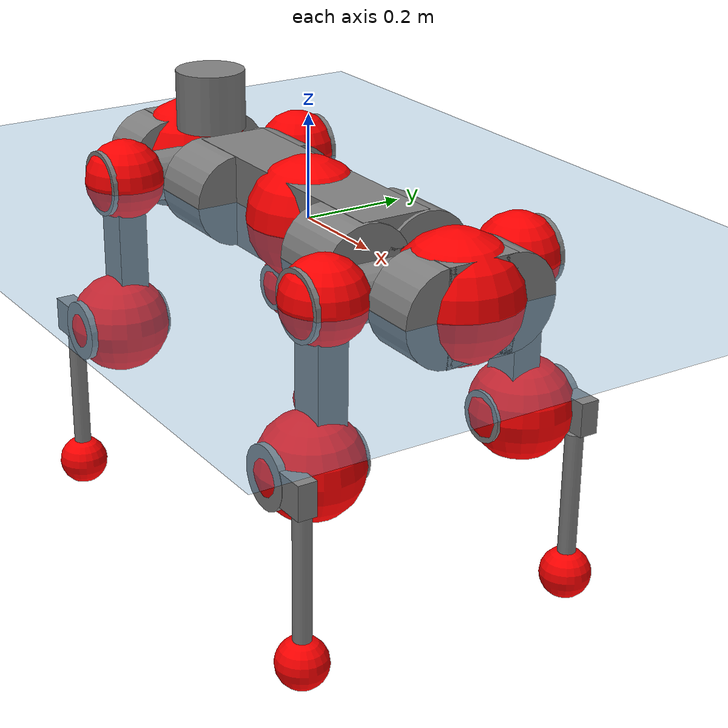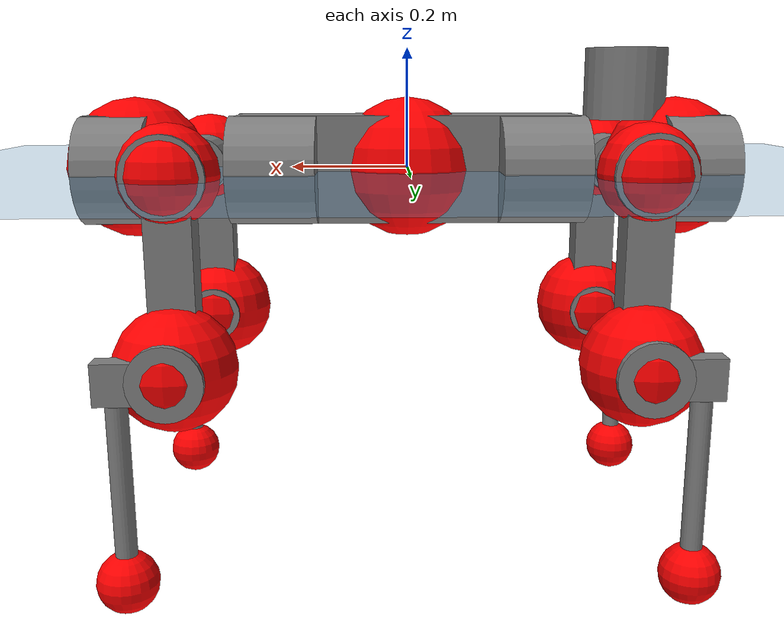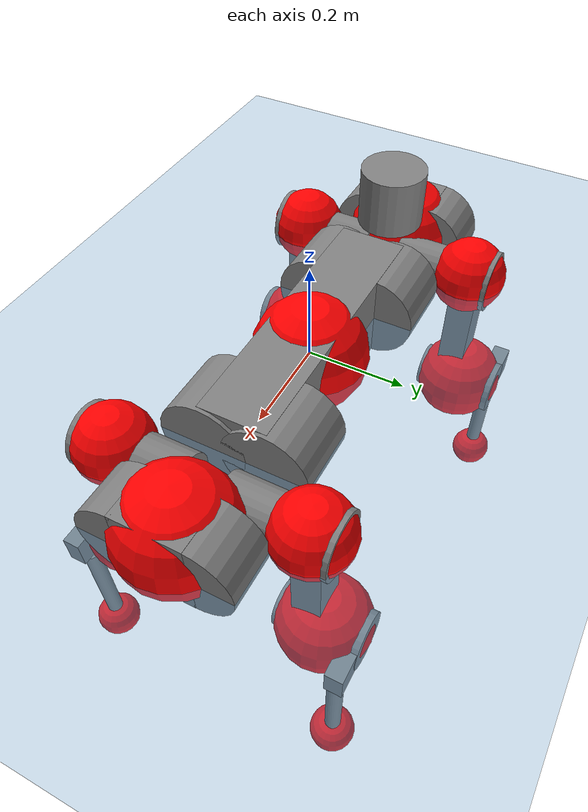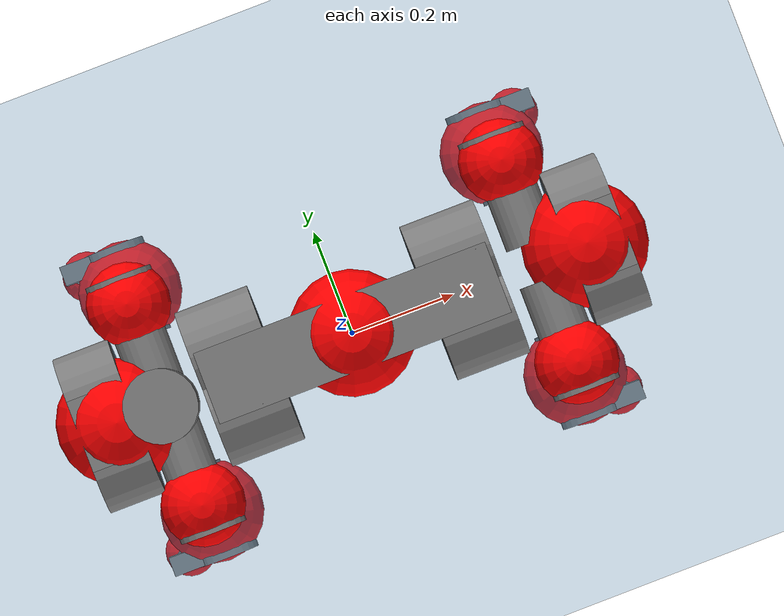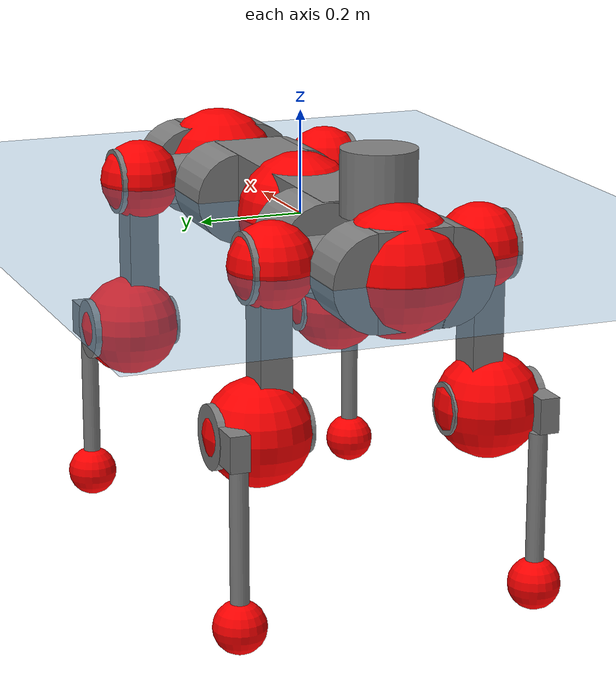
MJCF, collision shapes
<mujoco model="anymal_c">
  <compiler angle="radian" assetdir="assets" balanceinertia="true" inertiafromgeom="false"/>

  <option timestep="0.005" density="1.2" viscosity="2e-05"/>

  <size nkey="1"/>

  <visual>
    <quality shadowsize="8192"/>
    <map shadowclip="0.5"/>
  </visual>

  <default>
    <default class="/">
      <material specular="0" shininess="0.25"/>
      <geom contype="0" conaffinity="0" group="1" solref="-1000 -80"/>
      <site size="0.01 0.005 0.005" group="5"/>
      <general forcelimited="true" forcerange="-80 80" biastype="affine" gainprm="80" biasprm="0 -80 -2"/>
      <default class="anymal_c">
        <joint armature="0.01" damping="0.01" frictionloss="0.1"/>
        <default class="visual">
          <geom type="mesh" group="2"/>
          <default class="visual_zflip"/>
        </default>
        <default class="collision">
          <geom type="cylinder" group="3"/>
          <default class="foot">
            <geom size="0.03 0 0" type="sphere" condim="6" priority="1" friction="0.8 0.02 0.01" solimp="0.015 1 0.03"/>
          </default>
        </default>
      </default>
      <default class="reward_collision_sphere">
        <geom group="5" rgba="1 0 0 1"/>
      </default>
    </default>
  </default>

  <asset>
    <texture type="skybox" colorspace="auto" name="//unnamed_texture_0" builtin="gradient" rgb1="0.95 0.95 0.95" rgb2="0.95 0.95 0.95" width="100" height="600"/>
    <texture type="2d" colorspace="auto" name="texplane" builtin="checker" rgb1="0.345 0.575 0.748" rgb2="0.345 0.575 0.748" markrgb="1 1 1" width="512" height="512"/>
    <texture type="2d" colorspace="linear" name="base" file="base.png"/>
    <texture type="2d" colorspace="linear" name="top_shell" file="top_shell.png"/>
    <texture type="2d" colorspace="linear" name="bottom_shell" file="bottom_shell.png"/>
    <texture type="2d" colorspace="linear" name="remote" file="remote.png"/>
    <texture type="2d" colorspace="linear" name="hatch" file="hatch.png"/>
    <texture type="2d" colorspace="linear" name="handle" file="handle.png"/>
    <texture type="2d" colorspace="linear" name="face" file="face.png"/>
    <texture type="2d" colorspace="linear" name="battery" file="battery.png"/>
    <texture type="2d" colorspace="linear" name="lidar_cage" file="lidar_cage.png"/>
    <texture type="2d" colorspace="linear" name="depth_camera" file="depth_camera.png"/>
    <texture type="2d" colorspace="linear" name="wide_angle_camera" file="wide_angle_camera.png"/>
    <texture type="2d" colorspace="linear" name="lidar" file="lidar.png"/>
    <texture type="2d" colorspace="linear" name="drive" file="drive.png"/>
    <texture type="2d" colorspace="linear" name="hip_l" file="hip_l.png"/>
    <texture type="2d" colorspace="linear" name="shank_l" file="shank_l.png"/>
    <texture type="2d" colorspace="linear" name="foot" file="foot.png"/>
    <texture type="2d" colorspace="linear" name="thigh" file="thigh.png"/>
    <texture type="2d" colorspace="linear" name="shank_r" file="shank_r.png"/>
    <texture type="2d" colorspace="linear" name="hip_r" file="hip_r.png"/>
    <material name="MatPlane" class="/" texture="texplane" texuniform="true" texrepeat="2 2" specular="0.9" shininess="0.5"/>
    <material name="black_plastic" class="/" rgba="0.007 0.007 0.007 1"/>
    <material name="green" class="/" rgba="0.052 0.178 0.033 1"/>
    <material name="red" class="/" rgba="0.178 0.006 0.005 1"/>
    <material name="yellow" class="/" rgba="0.178 0.119 0.006 1"/>
    <material name="lwl" class="/" rgba="0.8 0.8 0.8 1"/>
    <material name="base" class="/" texture="base"/>
    <material name="top_shell" class="/" texture="top_shell"/>
    <material name="bottom_shell" class="/" texture="bottom_shell"/>
    <material name="hip_l" class="/" texture="hip_l"/>
    <material name="thigh" class="/" texture="thigh"/>
    <material name="shank_l" class="/" texture="shank_l"/>
    <material name="foot" class="/" texture="foot"/>
    <material name="hip_r" class="/" texture="hip_r"/>
    <material name="shank" class="/" texture="shank_r"/>
    <material name="hatch" class="/" texture="hatch"/>
    <material name="remote" class="/" texture="remote"/>
    <material name="handle" class="/" texture="handle"/>
    <material name="face" class="/" texture="face"/>
    <material name="depth_camera" class="/" texture="depth_camera"/>
    <material name="wide_angle_camera" class="/" texture="wide_angle_camera"/>
    <material name="battery" class="/" texture="battery"/>
    <material name="lidar_cage" class="/" texture="lidar_cage"/>
    <material name="lidar" class="/" texture="lidar"/>
    <material name="drive" class="/" texture="drive"/>
    <mesh name="base_0" class="/" file="base_0.obj"/>
    <mesh name="base_1" class="/" file="base_1.obj"/>
    <mesh name="base_2" class="/" file="base_2.obj"/>
    <mesh name="base_3" class="/" file="base_3.obj"/>
    <mesh name="base_4" class="/" file="base_4.obj"/>
    <mesh name="base_5" class="/" file="base_5.obj"/>
    <mesh name="top_shell" class="/" file="top_shell.obj"/>
    <mesh name="bottom_shell" class="/" file="bottom_shell.obj"/>
    <mesh name="remote" class="/" file="remote.obj"/>
    <mesh name="handle" class="/" file="handle.obj"/>
    <mesh name="face" class="/" file="face.obj"/>
    <mesh name="wide_angle_camera" class="/" file="wide_angle_camera.obj"/>
    <mesh name="depth_camera" class="/" file="depth_camera.obj"/>
    <mesh name="battery" class="/" file="battery.obj"/>
    <mesh name="lidar_cage" class="/" file="lidar_cage.obj"/>
    <mesh name="lidar" class="/" file="lidar.obj"/>
    <mesh name="drive" class="/" file="drive.obj"/>
    <mesh name="hip_l" class="/" file="hip_l.obj"/>
    <mesh name="thigh" class="/" file="thigh.obj"/>
    <mesh name="shank_l" class="/" file="shank_l.obj"/>
    <mesh name="foot" class="/" file="foot.obj"/>
    <mesh name="hip_r" class="/" file="hip_r.obj"/>
    <mesh name="hatch" class="/" file="hatch.obj"/>
    <mesh name="shank_r" class="/" file="shank_r.obj"/>
  </asset>

  <worldbody>
    <geom name="floor" class="/" size="100 100 0.125" type="plane" group="0" material="MatPlane"/>
    <light name="toplight_shadow" class="/" pos="0 0 5" dir="0.0990148 0.0990148 -0.990148" type="directional" ambient="0.04 0.04 0.04" diffuse="0.55 0.55 0.55" specular="0.12 0.12 0.12"/>
    <light name="toplight_fill" class="/" pos="0 0 5" dir="0.0990148 0.0990148 -0.990148" type="directional" castshadow="false" ambient="0.04 0.04 0.04" diffuse="0.3 0.3 0.3" specular="0.08 0.08 0.08"/>
    <body name="trunk" childclass="anymal_c" pos="2.12198e-05 0.000634626 0.000313169" quat="1 7.27041e-05 0.000212782 -0.000210242">
      <inertial pos="0.00331313 -0.00149145 0.0510476" quat="0.497613 0.501065 0.498152 0.503149" mass="18.2521" diaginertia="0.711745 0.356054 0.27382"/>
      <joint name="//unnamed_joint_0" type="free" armature="0" damping="0" frictionloss="0"/>
      <geom name="//unnamed_geom_1" class="visual" material="green" mesh="base_0"/>
      <geom name="//unnamed_geom_2" class="visual" material="yellow" mesh="base_1"/>
      <geom name="//unnamed_geom_3" class="visual" material="red" mesh="base_2"/>
      <geom name="//unnamed_geom_4" class="visual" material="black_plastic" mesh="base_3"/>
      <geom name="//unnamed_geom_5" class="visual" material="lwl" mesh="base_4"/>
      <geom name="//unnamed_geom_6" class="visual" material="base" mesh="base_5"/>
      <geom name="trunk_1" class="collision" size="0.288123 0.069547 0.0894175" type="box"/>
      <geom name="trunk_2" class="collision" size="0.0894175 0.0720308" pos="0.223956 0.0629374 0" quat="0.707107 0 0.707107 0"/>
      <geom name="trunk_3" class="collision" size="0.0894175 0.0720308" pos="-0.223956 0.0629374 0" quat="0.707107 0 0.707107 0"/>
      <geom name="trunk_4" class="collision" size="0.0894175 0.0720308" pos="0.223956 -0.0629374 0" quat="0.707107 0 0.707107 0"/>
      <geom name="trunk_5" class="collision" size="0.0894175 0.0720308" pos="-0.223956 -0.0629374 0" quat="0.707107 0 0.707107 0"/>
      <geom name="//unnamed_geom_12" class="visual" material="top_shell" mesh="top_shell"/>
      <geom name="//unnamed_geom_13" class="visual" material="bottom_shell" mesh="bottom_shell"/>
      <geom name="//unnamed_geom_14" class="visual" material="remote" mesh="remote"/>
      <geom name="//unnamed_geom_15" class="visual" material="handle" mesh="handle"/>
      <geom name="//unnamed_geom_16" class="visual" pos="0.426803 0 0" quat="1 0 0 0" material="face" mesh="face"/>
      <geom name="trunk_6" class="collision" size="0.054644 0.069547 0.0894175" pos="0.483435 0 0" type="box"/>
      <geom name="//unnamed_geom_18" class="collision" size="0.0894175 0.054644" pos="0.483435 0.0629374 0" quat="0.707107 0 0.707107 0"/>
      <geom name="//unnamed_geom_19" class="collision" size="0.0894175 0.054644" pos="0.483435 -0.0629374 0" quat="0.707107 0 0.707107 0"/>
      <geom name="//unnamed_geom_20" class="visual" pos="0.475353 0 -0.0308806" quat="0.965926 0 0.258819 0" material="depth_camera" mesh="depth_camera"/>
      <geom name="//unnamed_geom_21" class="visual" pos="0.528227 0 0.0157454" material="wide_angle_camera" mesh="wide_angle_camera"/>
      <geom name="//unnamed_geom_22" class="visual_zflip" pos="-0.426803 0 0" quat="0 0 0 1" material="face" mesh="face"/>
      <geom name="trunk_7" class="collision" size="0.054644 0.069547 0.0894175" pos="-0.483435 0 0" quat="0 0 0 1" type="box"/>
      <geom name="//unnamed_geom_24" class="collision" size="0.0894175 0.054644" pos="-0.483435 -0.0629374 0" quat="0 -0.707107 0 0.707107"/>
      <geom name="//unnamed_geom_25" class="collision" size="0.0894175 0.054644" pos="-0.483435 0.0629374 0" quat="0 -0.707107 0 0.707107"/>
      <geom name="//unnamed_geom_26" class="visual" pos="-0.475353 0 -0.0308806" quat="0 -0.258819 0 0.965926" material="depth_camera" mesh="depth_camera"/>
      <geom name="//unnamed_geom_27" class="visual_zflip" pos="-0.528227 0 0.0157454" quat="0 0 0 1" material="wide_angle_camera" mesh="wide_angle_camera"/>
      <geom name="//unnamed_geom_28" class="visual" material="battery" mesh="battery"/>
      <geom name="//unnamed_geom_29" class="visual" pos="0 0.0670331 0.0303866" quat="0.683013 -0.183013 0.183013 0.683013" material="depth_camera" mesh="depth_camera"/>
      <geom name="//unnamed_geom_30" class="visual" pos="0 -0.0670331 0.0303866" quat="0.683013 0.183013 0.183013 -0.683013" material="depth_camera" mesh="depth_camera"/>
      <geom name="//unnamed_geom_31" class="visual" pos="-0.374804 0 0.0773071" quat="1 0 0 0" material="lidar_cage" mesh="lidar_cage"/>
      <geom name="trunk_8" class="collision" size="0.069547 0.0596117" pos="-0.374804 0 0.140415"/>
      <geom name="//unnamed_geom_33" class="visual" pos="-0.374804 -5.12998e-05 0.149566" quat="0.707107 0 0 -0.707107" material="lidar" mesh="lidar"/>
      <geom name="//unnamed_geom_34" class="visual" pos="0.308801 0.0935612 -2.63396e-09" quat="0.258819 0.965926 0 0" material="drive" mesh="drive"/>
      <geom name="//unnamed_geom_35" class="visual" pos="0.308801 -0.0935612 2.63396e-09" quat="0.258819 -0.965926 0 0" material="drive" mesh="drive"/>
      <geom name="//unnamed_geom_36" class="visual" pos="-0.308801 0.0935612 2.63396e-09" quat="0 0 0.965926 -0.258819" material="drive" mesh="drive"/>
      <geom name="//unnamed_geom_37" class="visual" pos="-0.308801 -0.0935612 -2.63396e-09" quat="0 0 -0.965926 -0.258819" material="drive" mesh="drive"/>
      <geom name="//unnamed_geom_38" class="visual" pos="0.119443 0 0.0767812" quat="1 0 0 0" material="hatch" mesh="hatch"/>
      <geom name="//unnamed_geom_39" class="reward_collision_sphere" size="0.119223"/>
      <geom name="//unnamed_geom_40" class="reward_collision_sphere" size="0.119223" pos="0.463357 0 0"/>
      <geom name="//unnamed_geom_41" class="reward_collision_sphere" size="0.119223" pos="-0.463357 0 0"/>
      <site name="imu" pos="0.254867 0.00649153 0.0476183" size="0.00993528"/>
      <camera name="track" pos="0 -1.79821 0" quat="0.707107 0.707107 0 0" mode="trackcom"/>
      <camera name="ego_camera" pos="0.463357 0 -0.0420719" quat="-0.5 -0.5 0.5 0.5"/>
      <body name="LF_HIP" pos="0.309688 0.093596 -0.000221343" quat="0.258835 0.965922 -4.15816e-06 -1.15797e-05">
        <inertial pos="0.0584005 -0.0135075 -0.00855994" quat="-0.133373 0.704655 -0.137622 0.683179" mass="2.73139" diaginertia="0.00682117 0.00293715 0.00427087"/>
        <joint name="LF_HAA" pos="0 0 0" axis="0.999998 -0.000870664 0.00205235" range="-0.700013 0.479959" armature="0.0100216" damping="0.00904857" frictionloss="0.0984421"/>
        <geom name="//unnamed_geom_42" class="visual" pos="0 -0.000154944 2.54494e-05" quat="0.258819 -0.965926 0 0" material="hip_l" mesh="hip_l"/>
        <geom name="//unnamed_geom_43" class="visual" pos="0.0616779 -0.0730709 -0.0433169" quat="0.183013 -0.683013 0.683013 0.183013" material="drive" mesh="drive"/>
        <geom name="//unnamed_geom_44" class="collision" size="0.0496764 0.069547" pos="0.0616779 -0.0107531 -0.00726266" quat="-0.353553 -0.612372 0.612372 -0.353553"/>
        <body name="LF_THIGH" pos="0.0622383 -0.0666152 -0.0449885" quat="0.182811 -0.682538 0.68346 0.183314">
          <inertial pos="0.0318635 0.00160031 -0.258874" quat="0.993311 -0.00868088 -0.0801483 0.0826745" mass="2.98239" diaginertia="0.0348357 0.0178869 0.0054056"/>
          <joint name="LF_HFE" pos="0 0 0" axis="1 -0.000132385 -0.000893381" range="-3.13376 3.11873" armature="0.0106468" damping="0.0122452" frictionloss="0.104024"/>
          <geom name="//unnamed_geom_45" class="visual" pos="0.00259795 4.09376e-06 0" quat="0.707107 0 0 -0.707107" material="thigh" mesh="thigh"/>
          <geom name="//unnamed_geom_46" class="collision" size="0.0645793 0.0397411" pos="0.0411873 0 0" quat="0.5 0.5 -0.5 -0.5"/>
          <geom name="//unnamed_geom_47" class="collision" size="0.0372573 0.0298058 0.140399" pos="0.0308904 0 -0.148634" quat="0.707107 0 0 -0.707107" type="box"/>
          <geom name="//unnamed_geom_48" class="visual" pos="0.103277 0 -0.299762" quat="1 0 0 0" material="drive" mesh="drive"/>
          <geom name="//unnamed_geom_49" class="collision" size="0.0496764 0.069547" pos="0.0311993 0 -0.299762" quat="0.707107 0 0.707107 0"/>
          <geom name="//unnamed_geom_50" class="reward_collision_sphere" size="0.0794822" pos="0.025742 0 0"/>
          <body name="LF_SHANK" pos="0.103543 -0.000103639 -0.30065" quat="1 5.1171e-05 0.000130824 -0.000100948">
            <inertial pos="0.00497316 -0.0542593 -0.0849734" quat="0.993027 -0.115507 0.00122081 -0.0235527" mass="0.57887" diaginertia="0.0118889 0.00554357 0.0014498"/>
            <joint name="LF_KFE" pos="0 0 0" axis="1 0.000359474 0.000748849" range="-3.11047 3.13833" armature="0.0104433" damping="0.00287754" frictionloss="0.0972364"/>
            <geom name="//unnamed_geom_51" class="visual" pos="0.000847135 0.00451697 0" quat="0.707107 0 0 -0.707107" material="shank_l" mesh="shank_l"/>
            <geom name="LF_kfe_act" class="collision" size="0.0596117 0.0198706" pos="0.0205936 0 0" quat="0.5 0.5 -0.5 -0.5"/>
            <geom name="//unnamed_geom_53" class="collision" size="0.0571269 0.0335316 0.018877" pos="0.0205936 -0.0516977 0" quat="0.5 0.5 -0.5 -0.5" type="box"/>
            <geom name="//unnamed_geom_54" class="visual" pos="0.0134371 -0.0776207 -0.355476" quat="0.382683 0 0 -0.92388" material="foot" mesh="foot"/>
            <geom name="LF_calf" class="collision" size="0.0173867 0.140338" pos="0.0134373 -0.0790763 -0.177738" quat="0.707107 0 0 -0.707107"/>
            <geom name="LF_foot" class="foot" size="0.0301695" pos="0.0134373 -0.0790763 -0.331811" quat="0.707107 0 0 -0.707107"/>
            <geom name="//unnamed_geom_57" class="reward_collision_sphere" size="0.0993528" pos="-0.0514841 0 0"/>
            <geom name="//unnamed_geom_58" class="reward_collision_sphere" size="0.0496764" pos="0.0134373 -0.0790763 -0.331811"/>
            <site name="LF_foot" class="foot" pos="0.0134373 -0.0790763 -0.331811" quat="0.707107 0 0 -0.707107" size="0.00993528"/>
          </body>
        </body>
      </body>
      <body name="RF_HIP" pos="0.308049 -0.092936 -0.00168716" quat="0.258633 -0.965976 7.82472e-05 -0.000124736">
        <inertial pos="0.0580046 0.0132454 -0.0079889" quat="0.13261 0.677431 0.127712 0.712174" mass="2.74759" diaginertia="0.00681252 0.00289389 0.00420153"/>
        <joint name="RF_HAA" pos="0 0 0" axis="0.999996 -0.000403817 0.00294889" range="-0.491348 0.73251" armature="0.0104613" damping="0.0116019" frictionloss="0.098669"/>
        <geom name="//unnamed_geom_59" class="visual" pos="0 0.000154943 2.54493e-05" quat="0.258819 0.965926 0 0" material="hip_r" mesh="hip_r"/>
        <geom name="//unnamed_geom_60" class="visual" pos="0.0616779 0.0730709 -0.0433169" quat="0.183013 0.683013 0.683013 -0.183013" material="drive" mesh="drive"/>
        <geom name="//unnamed_geom_61" class="collision" size="0.0496764 0.069547" pos="0.0616779 0.0107531 -0.00726266" quat="-0.353553 0.612372 0.612372 0.353553"/>
        <body name="RF_THIGH" pos="0.0627106 0.0665757 -0.0458172" quat="0.183023 0.683011 0.683026 -0.182962">
          <inertial pos="0.0308618 0.000634444 -0.257102" quat="0.992619 -0.00639037 -0.0831575 0.088044" mass="3.00997" diaginertia="0.0353538 0.0175831 0.00539231"/>
          <joint name="RF_HFE" pos="0 0 0" axis="0.999991 -0.00414415 -0.00120273" stiffness="0.0103633" range="-3.13813 3.12749" armature="0.00962807" damping="0.0121224" frictionloss="0.103324"/>
          <geom name="//unnamed_geom_62" class="visual" pos="0.00259795 4.09376e-06 0" quat="0.707107 0 0 -0.707107" material="thigh" mesh="thigh"/>
          <geom name="//unnamed_geom_63" class="collision" size="0.0645793 0.0397411" pos="0.0411873 0 0" quat="0.5 0.5 0.5 0.5"/>
          <geom name="//unnamed_geom_64" class="collision" size="0.0372573 0.0298058 0.140399" pos="0.0308904 0 -0.148634" quat="0.707107 0 0 0.707107" type="box"/>
          <geom name="//unnamed_geom_65" class="visual" pos="0.103277 0 -0.299762" quat="1 0 0 0" material="drive" mesh="drive"/>
          <geom name="//unnamed_geom_66" class="collision" size="0.0496764 0.069547" pos="0.0311993 0 -0.299762" quat="0.707107 0 0.707107 0"/>
          <geom name="//unnamed_geom_67" class="reward_collision_sphere" size="0.0794822" pos="0.025742 0 0"/>
          <body name="RF_SHANK" pos="0.103787 -0.000549833 -0.298351" quat="1 -0.000106883 -5.75802e-05 -0.000144698">
            <inertial pos="0.00668009 0.0544617 -0.0849922" quat="0.993346 0.111993 -0.0015489 0.0268098" mass="0.587441" diaginertia="0.0120866 0.00549378 0.00148223"/>
            <joint name="RF_KFE" pos="0 0 0" axis="0.999998 0.00163032 0.00146873" stiffness="7.65145e-05" range="-3.1524 3.13641" armature="0.00967774" damping="0" frictionloss="0.102543"/>
            <geom name="//unnamed_geom_68" class="visual" pos="0.00084713 -0.00451696 0" quat="0.707107 0 0 0.707107" material="shank" mesh="shank_r"/>
            <geom name="RF_kfe_act" class="collision" size="0.0596117 0.0198706" pos="0.0205936 0 0" quat="0.5 0.5 0.5 0.5"/>
            <geom name="//unnamed_geom_70" class="collision" size="0.0571269 0.0335316 0.018877" pos="0.0205936 0.0516977 0" quat="0.5 0.5 0.5 0.5" type="box"/>
            <geom name="//unnamed_geom_71" class="visual" pos="0.0134375 0.0776207 -0.355476" quat="0.382683 0 0 0.92388" material="foot" mesh="foot"/>
            <geom name="RF_calf" class="collision" size="0.0173867 0.140338" pos="0.0134373 0.0790763 -0.177738" quat="0.707107 0 0 0.707107"/>
            <geom name="RF_foot" class="foot" size="0.0271545" pos="0.0134373 0.0790763 -0.331811" quat="0.707107 0 0 0.707107"/>
            <geom name="//unnamed_geom_74" class="reward_collision_sphere" size="0.0993528" pos="-0.0514841 0 0"/>
            <geom name="//unnamed_geom_75" class="reward_collision_sphere" size="0.0496764" pos="0.0134373 0.0790763 -0.331811"/>
            <site name="RF_foot" class="foot" pos="0.0134373 0.0790763 -0.331811" quat="0.707107 0 0 0.707107" size="0.00993528"/>
          </body>
        </body>
      </body>
      <body name="LH_HIP" pos="-0.30828 0.092806 4.23979e-05" quat="-1.82148e-05 6.27809e-05 0.965927 -0.258816">
        <inertial pos="0.0588997 0.0133467 -0.00959288" quat="0.135021 0.678941 0.129051 0.710038" mass="2.69841" diaginertia="0.00680744 0.00295259 0.00422579"/>
        <joint name="LH_HAA" pos="0 0 0" axis="0.99999 -0.000905783 0.00443867" range="-0.489233 0.732277" armature="0.00979945" damping="0.0107508" frictionloss="0.0986686"/>
        <geom name="//unnamed_geom_76" class="visual" pos="0 0.000154943 2.54493e-05" quat="-0.258819 -0.965926 0 0" material="hip_r" mesh="hip_r"/>
        <geom name="//unnamed_geom_77" class="visual" pos="0.0616779 0.0730709 -0.0433169" quat="0.183013 0.683013 0.683013 -0.183013" material="drive" mesh="drive"/>
        <geom name="//unnamed_geom_78" class="collision" size="0.0496764 0.069547" pos="0.0616779 0.0107531 -0.00726266" quat="-0.353553 0.612372 0.612372 0.353553"/>
        <body name="LH_THIGH" pos="0.0612014 0.0663233 -0.0447667" quat="0.183145 0.683134 0.683049 -0.182289">
          <inertial pos="0.031471 0.00159006 -0.258827" quat="0.992828 -0.004936 -0.0809026 0.0878795" mass="2.95754" diaginertia="0.035371 0.0173366 0.00541927"/>
          <joint name="LH_HFE" pos="0 0 0" axis="0.999975 -0.00505088 0.00486252" range="-3.15227 3.14599" armature="0.00959522" damping="0.00752442" frictionloss="0.103968"/>
          <geom name="//unnamed_geom_79" class="visual" pos="0.00259795 4.09376e-06 0" quat="0.707107 0 0 -0.707107" material="thigh" mesh="thigh"/>
          <geom name="//unnamed_geom_80" class="collision" size="0.0645793 0.0397411" pos="0.0411873 0 0" quat="0.5 0.5 -0.5 -0.5"/>
          <geom name="//unnamed_geom_81" class="collision" size="0.0372573 0.0298058 0.140399" pos="0.0308904 0 -0.148634" quat="0.707107 0 0 -0.707107" type="box"/>
          <geom name="//unnamed_geom_82" class="visual" pos="0.103277 0 -0.299762" quat="1 0 0 0" material="drive" mesh="drive"/>
          <geom name="//unnamed_geom_83" class="collision" size="0.0496764 0.069547" pos="0.0311993 0 -0.299762" quat="0.707107 0 0.707107 0"/>
          <geom name="//unnamed_geom_84" class="reward_collision_sphere" size="0.0794822" pos="0.025742 0 0"/>
          <body name="LH_SHANK" pos="0.10411 -0.00128597 -0.300757" quat="1 0.000147624 -1.44985e-05 -0.000569308">
            <inertial pos="0.0058307 0.0550876 -0.0850152" quat="0.992931 0.116036 -0.00126723 0.0249322" mass="0.582827" diaginertia="0.0119031 0.00548584 0.00145181"/>
            <joint name="LH_KFE" pos="0 0 0" axis="1 -0.000396298 0.000605012" range="-3.1191 3.14372" armature="0.0106885" damping="0.00698832" frictionloss="0.102987"/>
            <geom name="//unnamed_geom_85" class="visual" pos="0.00084713 -0.00451696 0" quat="-0.707107 0 0 -0.707107" material="shank" mesh="shank_r"/>
            <geom name="LH_kfe_act" class="collision" size="0.0596117 0.0198706" pos="0.0205936 0 0" quat="0.5 0.5 -0.5 -0.5"/>
            <geom name="//unnamed_geom_87" class="collision" size="0.0571269 0.0335316 0.018877" pos="0.0205936 0.0516977 0" quat="0.5 0.5 -0.5 -0.5" type="box"/>
            <geom name="//unnamed_geom_88" class="visual" pos="0.0134375 0.0776207 -0.355476" quat="-0.382683 0 0 -0.92388" material="foot" mesh="foot"/>
            <geom name="LH_calf" class="collision" size="0.0173867 0.140338" pos="0.0134373 0.0790763 -0.177738" quat="0.707107 0 0 -0.707107"/>
            <geom name="LH_foot" class="foot" size="0.0313446" pos="0.0134373 0.0790763 -0.331811" quat="0.707107 0 0 -0.707107"/>
            <geom name="//unnamed_geom_91" class="reward_collision_sphere" size="0.0993528" pos="-0.0514841 0 0"/>
            <geom name="//unnamed_geom_92" class="reward_collision_sphere" size="0.0496764" pos="0.0134373 0.0790763 -0.331811"/>
            <site name="LH_foot" class="foot" pos="0.0134373 0.0790763 -0.331811" quat="0.707107 0 0 -0.707107" size="0.00993528"/>
          </body>
        </body>
      </body>
      <body name="RH_HIP" pos="-0.310154 -0.0934815 -0.000151264" quat="-0.00032179 -0.000607951 -0.965753 -0.259464">
        <inertial pos="0.0581328 -0.0135887 -0.00945942" quat="-0.128487 0.709563 -0.134845 0.679579" mass="2.75749" diaginertia="0.00685275 0.0029134 0.00437782"/>
        <joint name="RH_HAA" pos="0 0 0" axis="0.999999 -8.21736e-05 0.00149686" range="-0.729978 0.482292" armature="0.0103655" damping="0.0106956" frictionloss="0.0953128"/>
        <geom name="//unnamed_geom_93" class="visual" pos="0 -0.000154944 2.54494e-05" quat="-0.258819 0.965926 0 0" material="hip_l" mesh="hip_l"/>
        <geom name="//unnamed_geom_94" class="visual" pos="0.0616779 -0.0730709 -0.0433169" quat="-0.183013 0.683013 -0.683013 -0.183013" material="drive" mesh="drive"/>
        <geom name="//unnamed_geom_95" class="collision" size="0.0496764 0.069547" pos="0.0616779 -0.0107531 -0.00726266" quat="0.353553 0.612372 -0.612372 0.353553"/>
        <body name="RH_THIGH" pos="0.0621688 -0.0657406 -0.0442891" quat="-0.183162 0.682718 -0.683305 -0.182873">
          <inertial pos="0.0321682 0.000154169 -0.25809" quat="0.992901 -0.00421945 -0.0828474 0.0852369" mass="3.01021" diaginertia="0.0349592 0.0176483 0.00544711"/>
          <joint name="RH_HFE" pos="0 0 0" axis="0.999999 -0.00127779 0.00115546" range="-3.14215 3.17576" armature="0.00925694" damping="0.00907245" frictionloss="0.0996452"/>
          <geom name="//unnamed_geom_96" class="visual" pos="0.00259795 4.09376e-06 0" quat="0.707107 0 0 -0.707107" material="thigh" mesh="thigh"/>
          <geom name="//unnamed_geom_97" class="collision" size="0.0645793 0.0397411" pos="0.0411873 0 0" quat="0.5 0.5 0.5 0.5"/>
          <geom name="//unnamed_geom_98" class="collision" size="0.0372573 0.0298058 0.140399" pos="0.0308904 0 -0.148634" quat="0.707107 0 0 0.707107" type="box"/>
          <geom name="//unnamed_geom_99" class="visual" pos="0.103277 0 -0.299762" quat="1 0 0 0" material="drive" mesh="drive"/>
          <geom name="//unnamed_geom_100" class="collision" size="0.0496764 0.069547" pos="0.0311993 0 -0.299762" quat="0.707107 0 0.707107 0"/>
          <geom name="//unnamed_geom_101" class="reward_collision_sphere" size="0.0794822" pos="0.025742 0 0"/>
          <body name="RH_SHANK" pos="0.10218 0.000605012 -0.300013" quat="1 2.19249e-05 -1.97449e-06 -1.80866e-05">
            <inertial pos="0.00664629 -0.0544498 -0.0850895" quat="0.992928 -0.115969 -0.0011393 -0.0253866" mass="0.571722" diaginertia="0.0117267 0.00535645 0.00143499"/>
            <joint name="RH_KFE" pos="0 0 0" axis="0.999983 0.00289253 0.00506191" stiffness="0.00105651" range="-3.10744 3.11718" armature="0.00967926" damping="0.00644401" frictionloss="0.0946888"/>
            <geom name="//unnamed_geom_102" class="visual" pos="0.000847135 0.00451697 0" quat="0.707107 0 0 -0.707107" material="shank_l" mesh="shank_l"/>
            <geom name="RH_kfe_act" class="collision" size="0.0596117 0.0198706" pos="0.0205936 0 0" quat="0.5 0.5 0.5 0.5"/>
            <geom name="//unnamed_geom_104" class="collision" size="0.0571269 0.0335316 0.018877" pos="0.0205936 -0.0516977 0" quat="0.5 0.5 0.5 0.5" type="box"/>
            <geom name="//unnamed_geom_105" class="visual" pos="0.0134371 -0.0776207 -0.355476" quat="0.382683 0 0 -0.92388" material="foot" mesh="foot"/>
            <geom name="RH_calf" class="collision" size="0.0173867 0.140338" pos="0.0134373 -0.0790763 -0.177738" quat="0.707107 0 0 0.707107"/>
            <geom name="RH_foot" class="foot" size="0.0288625" pos="0.0134373 -0.0790763 -0.331811" quat="0.707107 0 0 0.707107"/>
            <geom name="//unnamed_geom_108" class="reward_collision_sphere" size="0.0993528" pos="-0.0514841 0 0"/>
            <geom name="//unnamed_geom_109" class="reward_collision_sphere" size="0.0496764" pos="0.0134373 -0.0790763 -0.331811"/>
            <site name="RH_foot" class="foot" pos="0.0134373 -0.0790763 -0.331811" quat="0.707107 0 0 0.707107" size="0.00993528"/>
          </body>
        </body>
      </body>
    </body>
  </worldbody>

  <contact>
    <pair class="/" geom1="floor" geom2="LF_foot" name="//unnamed_contact_0"/>
    <pair class="/" geom1="floor" geom2="RF_foot" name="//unnamed_contact_1"/>
    <pair class="/" geom1="floor" geom2="LH_foot" name="//unnamed_contact_2"/>
    <pair class="/" geom1="floor" geom2="RH_foot" name="//unnamed_contact_3"/>
  </contact>

  <actuator>
    <general name="LF_HAA" class="/" joint="LF_HAA" forcerange="-77.2787 77.2787" gainprm="80.3605" biasprm="0 -80.3605 -1.87782"/>
    <general name="LF_HFE" class="/" joint="LF_HFE" forcerange="-79.3186 79.3186" gainprm="80.3605" biasprm="0 -80.3605 -1.87782"/>
    <general name="LF_KFE" class="/" joint="LF_KFE" forcerange="-80.3083 80.3083" gainprm="80.3605" biasprm="0 -80.3605 -1.87782"/>
    <general name="RF_HAA" class="/" joint="RF_HAA" forcerange="-83.1248 83.1248" gainprm="80.3605" biasprm="0 -80.3605 -1.87782"/>
    <general name="RF_HFE" class="/" joint="RF_HFE" forcerange="-80.0743 80.0743" gainprm="80.3605" biasprm="0 -80.3605 -1.87782"/>
    <general name="RF_KFE" class="/" joint="RF_KFE" forcerange="-80.6882 80.6882" gainprm="80.3605" biasprm="0 -80.3605 -1.87782"/>
    <general name="LH_HAA" class="/" joint="LH_HAA" forcerange="-80.0864 80.0864" gainprm="80.3605" biasprm="0 -80.3605 -1.87782"/>
    <general name="LH_HFE" class="/" joint="LH_HFE" forcerange="-80.1469 80.1469" gainprm="80.3605" biasprm="0 -80.3605 -1.87782"/>
    <general name="LH_KFE" class="/" joint="LH_KFE" forcerange="-78.4186 78.4186" gainprm="80.3605" biasprm="0 -80.3605 -1.87782"/>
    <general name="RH_HAA" class="/" joint="RH_HAA" forcerange="-82.5608 82.5608" gainprm="80.3605" biasprm="0 -80.3605 -1.87782"/>
    <general name="RH_HFE" class="/" joint="RH_HFE" forcerange="-77.6445 77.6445" gainprm="80.3605" biasprm="0 -80.3605 -1.87782"/>
    <general name="RH_KFE" class="/" joint="RH_KFE" forcerange="-81.8564 81.8564" gainprm="80.3605" biasprm="0 -80.3605 -1.87782"/>
  </actuator>

  <sensor>
    <gyro site="imu" name="imu_angular_velocity"/>
    <velocimeter site="imu" name="imu_linear_velocity"/>
    <framelinvel objtype="site" objname="LF_foot" name="LF_foot_global_linear_velocity"/>
    <framelinvel objtype="site" objname="RF_foot" name="RF_foot_global_linear_velocity"/>
    <framelinvel objtype="site" objname="LH_foot" name="LH_foot_global_linear_velocity"/>
    <framelinvel objtype="site" objname="RH_foot" name="RH_foot_global_linear_velocity"/>
  </sensor>

  <keyframe>
    <key name="home" qpos="0 0 0.55 1 0 0 0 0 0.4 -0.8 0 -0.4 0.8 0 -0.4 0.8 0 0.4 -0.8"/>
  </keyframe>
</mujoco>
